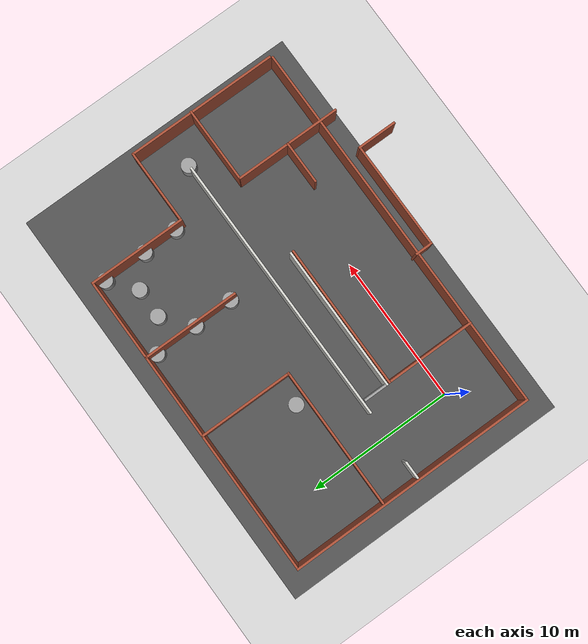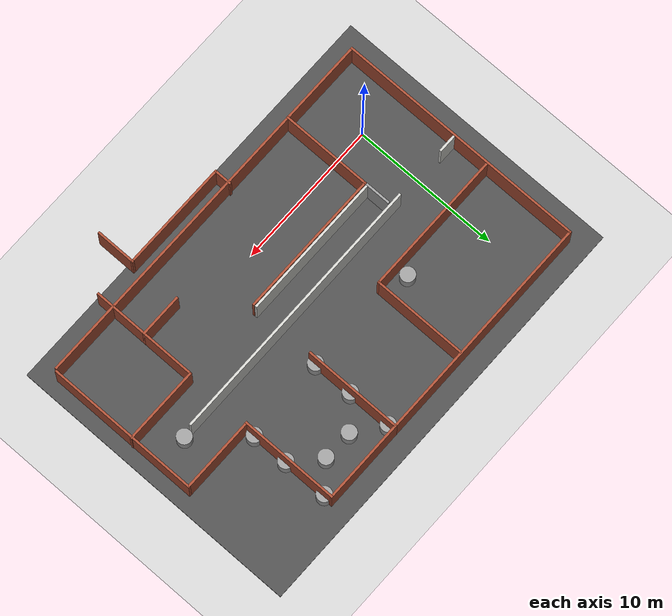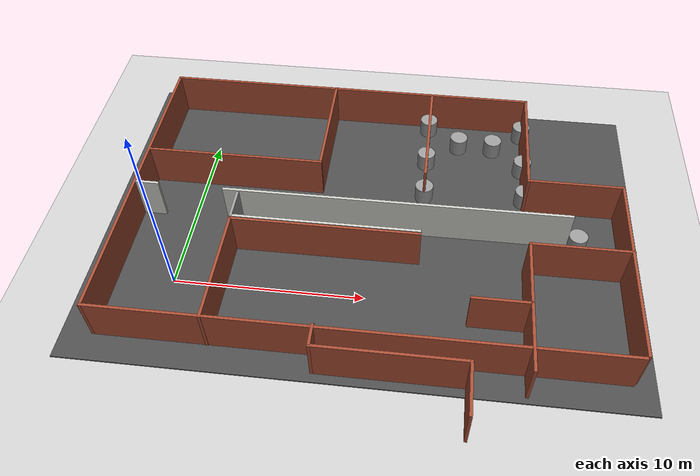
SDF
<sdf version="1.7">
 <world name="default">
  <light name="sun" type="directional">
   <pose>0 0 10 0 -0 0</pose>
   <diffuse>0.8 0.8 0.8 1</diffuse>
   <specular>0.2 0.2 0.2 1</specular>
   <attenuation>
    <range>1000</range>
    <constant>0.9</constant>
    <linear>0.01</linear>
    <quadratic>0.001</quadratic>
   </attenuation>
   <direction>-0.5 0.1 -0.9</direction>
   <spot><inner_angle>0</inner_angle><outer_angle>0</outer_angle><falloff>0</falloff></spot>
  </light>
  <model name="ground_plane">
   <static>1</static>
   <link name="link">
    <collision name="collision">
     <geometry><plane><normal>0 0 1</normal><size>100 100</size></plane></geometry>
     <surface><friction><ode><mu>100</mu><mu2>50</mu2></ode></friction></surface>
    </collision>
    <visual name="visual">
     <cast_shadows>0</cast_shadows>
     <geometry><plane><normal>0 0 1</normal><size>100 100</size></plane></geometry>
     <material>
      <script><uri>file://media/materials/scripts/gazebo.material</uri><name>Gazebo/Grey</name></script>
     </material>
    </visual>
   </link>
  </model>
  <gravity>0 0 -9.8</gravity>
  <magnetic_field>6e-06 2.3e-05 -4.2e-05</magnetic_field>
  <atmosphere type="adiabatic"/>
  <physics type="ode">
   <max_step_size>0.001</max_step_size>
   <real_time_factor>1</real_time_factor>
   <real_time_update_rate>1000</real_time_update_rate>
  </physics>
  <scene><ambient>0.4 0.4 0.4 1</ambient><background>0.7 0.7 0.7 1</background><shadows>1</shadows></scene>
  <audio><device>default</device></audio>
  <spherical_coordinates>
   <surface_model>EARTH_WGS84</surface_model>
   <latitude_deg>0</latitude_deg>
   <longitude_deg>0</longitude_deg>
   <elevation>0</elevation>
   <heading_deg>0</heading_deg>
  </spherical_coordinates>
  <model name="asphalt_plane">
   <static>1</static>
   <link name="link">
    <collision name="collision"><geometry><box><size>0 0 0.1</size></box></geometry></collision>
    <visual name="visual">
     <cast_shadows>0</cast_shadows>
     <geometry><box><size>0 0 0.1</size></box></geometry>
     <material>
      <script>
       <uri>model://asphalt_plane/materials/scripts</uri>
       <uri>model://asphalt_plane/materials/textures</uri>
       <name>vrc/asphalt</name>
      </script>
     </material>
    </visual>
   </link>
   <pose>-0.239334 0.1023 0 0 -0 0</pose>
  </model>
  <model name="asphalt_plane_0">
   <static>1</static>
   <link name="link">
    <collision name="collision"><geometry><box><size>28.8959 20 0.1</size></box></geometry></collision>
    <visual name="visual">
     <cast_shadows>0</cast_shadows>
     <geometry><box><size>28.8959 20 0.1</size></box></geometry>
     <material>
      <script>
       <uri>model://asphalt_plane/materials/scripts</uri>
       <uri>model://asphalt_plane/materials/textures</uri>
       <name>vrc/asphalt</name>
      </script>
     </material>
    </visual>
   </link>
   <pose>9.77864 4.93704 0 0 -0 0</pose>
  </model>
  <model name="Frontier">
   <pose>10.117 5.00234 0 0 -0 0</pose>
   <link name="Wall_11">
    <collision name="Wall_11_Collision">
     <geometry><box><size>15.75 0.15 2.5</size></box></geometry>
     <pose>0 0 1.25 0 -0 0</pose>
    </collision>
    <visual name="Wall_11_Visual">
     <pose>0 0 1.25 0 -0 0</pose>
     <geometry><box><size>15.75 0.15 2.5</size></box></geometry>
     <material>
      <script><uri>file://media/materials/scripts/gazebo.material</uri><name>Gazebo/Bricks</name></script>
      <ambient>1 1 1 1</ambient>
     </material>
     <meta><layer>0</layer></meta>
    </visual>
    <pose>-5.33966 8.55766 0 0 -0 3.14159</pose>
   </link>
   <link name="Wall_12">
    <collision name="Wall_12_Collision">
     <geometry><box><size>17.25 0.15 2.5</size></box></geometry>
     <pose>0 0 1.25 0 -0 0</pose>
    </collision>
    <visual name="Wall_12_Visual">
     <pose>0 0 1.25 0 -0 0</pose>
     <geometry><box><size>17.25 0.15 2.5</size></box></geometry>
     <material>
      <script><uri>file://media/materials/scripts/gazebo.material</uri><name>Gazebo/Bricks</name></script>
      <ambient>1 1 1 1</ambient>
     </material>
     <meta><layer>0</layer></meta>
    </visual>
    <pose>-13.1397 0.007655 0 0 -0 -1.5708</pose>
   </link>
   <link name="Wall_16">
    <collision name="Wall_16_Collision">
     <geometry><box><size>26.25 0.15 2.5</size></box></geometry>
     <pose>0 0 1.25 0 -0 0</pose>
    </collision>
    <visual name="Wall_16_Visual">
     <pose>0 0 1.25 0 -0 0</pose>
     <geometry><box><size>26.25 0.15 2.5</size></box></geometry>
     <material>
      <script><uri>file://media/materials/scripts/gazebo.material</uri><name>Gazebo/Bricks</name></script>
      <ambient>1 1 1 1</ambient>
     </material>
     <meta><layer>0</layer></meta>
    </visual>
    <pose>-0.089662 -8.54234 0 0 -0 0</pose>
   </link>
   <link name="Wall_18">
    <collision name="Wall_18_Collision">
     <geometry><box><size>10.5 0.15 2.5</size></box></geometry>
     <pose>0 0 1.25 0 -0 0</pose>
    </collision>
    <visual name="Wall_18_Visual">
     <pose>0 0 1.25 0 -0 0</pose>
     <geometry><box><size>10.5 0.15 2.5</size></box></geometry>
     <material>
      <script><uri>file://media/materials/scripts/gazebo.material</uri><name>Gazebo/Bricks</name></script>
      <ambient>1 1 1 1</ambient>
     </material>
     <meta><layer>0</layer></meta>
    </visual>
    <pose>13.103 -3.21734 0 0 -0 -1.5708</pose>
   </link>
   <link name="Wall_37">
    <collision name="Wall_37_Collision">
     <geometry><box><size>6.5 0.15 2.5</size></box></geometry>
     <pose>0 0 1.25 0 -0 0</pose>
    </collision>
    <visual name="Wall_37_Visual">
     <pose>0 0 1.25 0 -0 0</pose>
     <geometry><box><size>6.5 0.15 2.5</size></box></geometry>
     <material>
      <script><uri>file://media/materials/scripts/gazebo.material</uri><name>Gazebo/Bricks</name></script>
      <ambient>1 1 1 1</ambient>
     </material>
     <meta><layer>0</layer></meta>
    </visual>
    <pose>-3.38278 5.32384 0 0 -0 -1.5708</pose>
   </link>
   <link name="Wall_39">
    <collision name="Wall_39_Collision">
     <geometry><box><size>9.75 0.15 2.5</size></box></geometry>
     <pose>0 0 1.25 0 -0 0</pose>
    </collision>
    <visual name="Wall_39_Visual">
     <pose>0 0 1.25 0 -0 0</pose>
     <geometry><box><size>9.75 0.15 2.5</size></box></geometry>
     <material>
      <script><uri>file://media/materials/scripts/gazebo.material</uri><name>Gazebo/Bricks</name></script>
      <ambient>1 1 1 1</ambient>
     </material>
     <meta><layer>0</layer></meta>
    </visual>
    <pose>-8.18278 2.14884 0 0 -0 3.14159</pose>
   </link>
   <link name="Wall_4">
    <collision name="Wall_4_Collision">
     <geometry><box><size>5.19236 0.15 2.5</size></box></geometry>
     <pose>0 0 1.25 0 -0 0</pose>
    </collision>
    <visual name="Wall_4_Visual">
     <pose>0 0 1.25 0 -0 0</pose>
     <geometry><box><size>5.19236 0.15 2.5</size></box></geometry>
     <material>
      <script><uri>file://media/materials/scripts/gazebo.material</uri><name>Gazebo/Bricks</name></script>
      <ambient>1 1 1 1</ambient>
     </material>
     <meta><layer>0</layer></meta>
    </visual>
    <pose>10.5817 1.95765 0 0 -0 3.14159</pose>
   </link>
   <link name="Wall_46">
    <collision name="Wall_46_Collision">
     <geometry><box><size>5.25 0.15 2.5</size></box></geometry>
     <pose>0 0 1.25 0 -0 0</pose>
    </collision>
    <visual name="Wall_46_Visual">
     <pose>0 0 1.25 0 -0 0</pose>
     <geometry><box><size>5.25 0.15 2.5</size></box></geometry>
     <material>
      <script><uri>file://media/materials/scripts/gazebo.material</uri><name>Gazebo/Bricks</name></script>
      <ambient>1 1 1 1</ambient>
     </material>
     <meta><layer>0</layer></meta>
    </visual>
    <pose>10.5897 -2.46083 0 0 -0 3.14159</pose>
   </link>
   <link name="Wall_52">
    <collision name="Wall_52_Collision">
     <geometry><box><size>10 0.15 2.5</size></box></geometry>
     <pose>0 0 1.25 0 -0 0</pose>
    </collision>
    <visual name="Wall_52_Visual">
     <pose>0 0 1.25 0 -0 0</pose>
     <geometry><box><size>10 0.15 2.5</size></box></geometry>
     <material>
      <script><uri>file://media/materials/scripts/gazebo.material</uri><name>Gazebo/Bricks</name></script>
      <ambient>1 1 1 1</ambient>
     </material>
     <meta><layer>0</layer></meta>
    </visual>
    <pose>-2.47147 -2.45766 0 0 -0 3.14159</pose>
   </link>
   <link name="Wall_56">
    <collision name="Wall_56_Collision">
     <geometry><box><size>6.25 0.15 2.5</size></box></geometry>
     <pose>0 0 1.25 0 -0 0</pose>
    </collision>
    <visual name="Wall_56_Visual">
     <pose>0 0 1.25 0 -0 0</pose>
     <geometry><box><size>6.25 0.15 2.5</size></box></geometry>
     <material>
      <script><uri>file://media/materials/scripts/gazebo.material</uri><name>Gazebo/Bricks</name></script>
      <ambient>1 1 1 1</ambient>
     </material>
     <meta><layer>0</layer></meta>
    </visual>
    <pose>-7.39647 -5.50766 0 0 -0 -1.5708</pose>
   </link>
   <link name="Wall_7">
    <collision name="Wall_7_Collision">
     <geometry><box><size>6.75 0.15 2.5</size></box></geometry>
     <pose>0 0 1.25 0 -0 0</pose>
    </collision>
    <visual name="Wall_7_Visual">
     <pose>0 0 1.25 0 -0 0</pose>
     <geometry><box><size>6.75 0.15 2.5</size></box></geometry>
     <material>
      <script><uri>file://media/materials/scripts/gazebo.material</uri><name>Gazebo/Bricks</name></script>
      <ambient>1 1 1 1</ambient>
     </material>
     <meta><layer>0</layer></meta>
    </visual>
    <pose>8.06034 5.25765 0 0 -0 1.5708</pose>
   </link>
   <link name="Wall_8">
    <collision name="Wall_8_Collision">
     <geometry><box><size>5.75 0.15 2.5</size></box></geometry>
     <pose>0 0 1.25 0 -0 0</pose>
    </collision>
    <visual name="Wall_8_Visual">
     <pose>0 0 1.25 0 -0 0</pose>
     <geometry><box><size>5.75 0.15 2.5</size></box></geometry>
     <material>
      <script><uri>file://media/materials/scripts/gazebo.material</uri><name>Gazebo/Bricks</name></script>
      <ambient>1 1 1 1</ambient>
     </material>
     <meta><layer>0</layer></meta>
    </visual>
    <pose>5.26034 8.55766 0 0 -0 3.14159</pose>
   </link>
   <link name="Wall_9">
    <collision name="Wall_9_Collision">
     <geometry><box><size>6.75 0.15 2.5</size></box></geometry>
     <pose>0 0 1.25 0 -0 0</pose>
    </collision>
    <visual name="Wall_9_Visual">
     <pose>0 0 1.25 0 -0 0</pose>
     <geometry><box><size>6.75 0.15 2.5</size></box></geometry>
     <material>
      <script><uri>file://media/materials/scripts/gazebo.material</uri><name>Gazebo/Bricks</name></script>
      <ambient>1 1 1 1</ambient>
     </material>
     <meta><layer>0</layer></meta>
    </visual>
    <pose>2.46034 5.25765 0 0 -0 -1.5708</pose>
   </link>
   <static>1</static>
  </model>
  <model name="unit_cylinder_0">
   <pose>4.9397 7.87674 0.55 0 -0 0.000311</pose>
   <link name="link">
    <inertial>
     <mass>1</mass>
     <inertia><ixx>0.145833</ixx><ixy>0</ixy><ixz>0</ixz><iyy>0.145833</iyy><iyz>0</iyz><izz>0.125</izz></inertia>
    </inertial>
    <collision name="collision">
     <geometry><cylinder><radius>0.5</radius><length>1</length></cylinder></geometry>
    </collision>
    <visual name="visual">
     <geometry><cylinder><radius>0.5</radius><length>1</length></cylinder></geometry>
     <material>
      <script><name>Gazebo/Grey</name><uri>file://media/materials/scripts/gazebo.material</uri></script>
     </material>
    </visual>
   </link>
  </model>
  <model name="unit_cylinder_3">
   <pose>12.5755 7.35727 0.54999 0 -0 8.2e-05</pose>
   <link name="link">
    <inertial>
     <mass>1</mass>
     <inertia><ixx>0.145833</ixx><ixy>0</ixy><ixz>0</ixz><iyy>0.145833</iyy><iyz>0</iyz><izz>0.125</izz></inertia>
    </inertial>
    <collision name="collision">
     <geometry><cylinder><radius>0.5</radius><length>1</length></cylinder></geometry>
    </collision>
    <visual name="visual">
     <geometry><cylinder><radius>0.5</radius><length>1</length></cylinder></geometry>
     <material>
      <script><name>Gazebo/Grey</name><uri>file://media/materials/scripts/gazebo.material</uri></script>
     </material>
    </visual>
   </link>
  </model>
  <model name="unit_cylinder_4">
   <pose>12.5349 10.0474 0.550001 2e-06 1e-06 0.000542</pose>
   <link name="link">
    <inertial>
     <mass>1</mass>
     <inertia><ixx>0.145833</ixx><ixy>0</ixy><ixz>0</ixz><iyy>0.145833</iyy><iyz>0</iyz><izz>0.125</izz></inertia>
    </inertial>
    <collision name="collision">
     <geometry><cylinder><radius>0.5</radius><length>1</length></cylinder></geometry>
    </collision>
    <visual name="visual">
     <geometry><cylinder><radius>0.5</radius><length>1</length></cylinder></geometry>
     <material>
      <script><name>Gazebo/Grey</name><uri>file://media/materials/scripts/gazebo.material</uri></script>
     </material>
    </visual>
   </link>
  </model>
  <model name="unit_cylinder_5">
   <pose>12.5191 12.9835 0.55 0 -0 0.000523</pose>
   <link name="link">
    <inertial>
     <mass>1</mass>
     <inertia><ixx>0.145833</ixx><ixy>0</ixy><ixz>0</ixz><iyy>0.145833</iyy><iyz>0</iyz><izz>0.125</izz></inertia>
    </inertial>
    <collision name="collision">
     <geometry><cylinder><radius>0.5</radius><length>1</length></cylinder></geometry>
    </collision>
    <visual name="visual">
     <geometry><cylinder><radius>0.5</radius><length>1</length></cylinder></geometry>
     <material>
      <script><name>Gazebo/Grey</name><uri>file://media/materials/scripts/gazebo.material</uri></script>
     </material>
    </visual>
   </link>
  </model>
  <model name="Inner_Frontier_2_0">
   <pose>10.4125 -2.3169 0 0 -0 0</pose>
   <link name="Wall_28">
    <collision name="Wall_28_Collision">
     <geometry><box><size>2.75 0.15 2.5</size></box></geometry>
     <pose>0 0 1.25 0 -0 0</pose>
    </collision>
    <visual name="Wall_28_Visual">
     <pose>0 0 1.25 0 -0 0</pose>
     <geometry><box><size>2.75 0.15 2.5</size></box></geometry>
     <material>
      <script><uri>file://media/materials/scripts/gazebo.material</uri><name>Gazebo/Bricks</name></script>
      <ambient>1 1 1 1</ambient>
     </material>
     <meta><layer>0</layer></meta>
    </visual>
    <pose>4.95486 -3.52159 0 0 -0 1.5708</pose>
   </link>
   <link name="Wall_29">
    <collision name="Wall_29_Collision">
     <geometry><box><size>7.5 0.15 2.5</size></box></geometry>
     <pose>0 0 1.25 0 -0 0</pose>
    </collision>
    <visual name="Wall_29_Visual">
     <pose>0 0 1.25 0 -0 0</pose>
     <geometry><box><size>7.5 0.15 2.5</size></box></geometry>
     <material>
      <script><uri>file://media/materials/scripts/gazebo.material</uri><name>Gazebo/Bricks</name></script>
      <ambient>1 1 1 1</ambient>
     </material>
     <meta><layer>0</layer></meta>
    </visual>
    <pose>1.27986 -2.22159 0 0 -0 3.14159</pose>
   </link>
   <link name="Wall_30">
    <collision name="Wall_30_Collision">
     <geometry><box><size>1.25 0.15 2.5</size></box></geometry>
     <pose>0 0 1.25 0 -0 0</pose>
    </collision>
    <visual name="Wall_30_Visual">
     <pose>0 0 1.25 0 -0 0</pose>
     <geometry><box><size>1.25 0.15 2.5</size></box></geometry>
     <material>
      <script><uri>file://media/materials/scripts/gazebo.material</uri><name>Gazebo/Bricks</name></script>
      <ambient>1 1 1 1</ambient>
     </material>
     <meta><layer>0</layer></meta>
    </visual>
    <pose>-2.39514 -1.67159 0 0 -0 1.5708</pose>
   </link>
   <link name="Wall_33">
    <collision name="Wall_33_Collision">
     <geometry><box><size>3 0.15 2.5</size></box></geometry>
     <pose>0 0 1.25 0 -0 0</pose>
    </collision>
    <visual name="Wall_33_Visual">
     <pose>0 0 1.25 0 -0 0</pose>
     <geometry><box><size>3 0.15 2.5</size></box></geometry>
     <material>
      <script><uri>file://media/materials/scripts/gazebo.material</uri><name>Gazebo/Bricks</name></script>
      <ambient>1 1 1 1</ambient>
     </material>
     <meta><layer>0</layer></meta>
    </visual>
    <pose>6.30464 1.22159 0 0 -0 0</pose>
   </link>
   <link name="Wall_34">
    <collision name="Wall_34_Collision">
     <geometry><box><size>3.75 0.15 2.5</size></box></geometry>
     <pose>0 0 1.25 0 -0 0</pose>
    </collision>
    <visual name="Wall_34_Visual">
     <pose>0 0 1.25 0 -0 0</pose>
     <geometry><box><size>3.75 0.15 2.5</size></box></geometry>
     <material>
      <script><uri>file://media/materials/scripts/gazebo.material</uri><name>Gazebo/Bricks</name></script>
      <ambient>1 1 1 1</ambient>
     </material>
     <meta><layer>0</layer></meta>
    </visual>
    <pose>7.72964 -0.578413 0 0 -0 -1.5708</pose>
   </link>
   <link name="Wall_36">
    <collision name="Wall_36_Collision">
     <geometry><box><size>3.75 0.15 2.5</size></box></geometry>
     <pose>0 0 1.25 0 -0 0</pose>
    </collision>
    <visual name="Wall_36_Visual">
     <pose>0 0 1.25 0 -0 0</pose>
     <geometry><box><size>3.75 0.15 2.5</size></box></geometry>
     <material>
      <script><uri>file://media/materials/scripts/gazebo.material</uri><name>Gazebo/Bricks</name></script>
      <ambient>1 1 1 1</ambient>
     </material>
     <meta><layer>0</layer></meta>
    </visual>
    <pose>7.72964 3.02159 0 0 -0 1.5708</pose>
   </link>
   <static>1</static>
  </model>
  <model name="unit_cylinder_6">
   <pose>18.1879 7.53503 0.549992 3e-06 1e-06 -0.001986</pose>
   <link name="link">
    <inertial>
     <mass>1</mass>
     <inertia><ixx>0.145833</ixx><ixy>0</ixy><ixz>0</ixz><iyy>0.145833</iyy><iyz>0</iyz><izz>0.125</izz></inertia>
    </inertial>
    <collision name="collision">
     <geometry><cylinder><radius>0.5</radius><length>1</length></cylinder></geometry>
    </collision>
    <visual name="visual">
     <geometry><cylinder><radius>0.5</radius><length>1</length></cylinder></geometry>
     <material>
      <script><name>Gazebo/Grey</name><uri>file://media/materials/scripts/gazebo.material</uri></script>
     </material>
    </visual>
   </link>
  </model>
  <model name="unit_cylinder_2">
   <pose>18.1292 9.94518 0.549991 1e-06 -0 1e-06</pose>
   <link name="link">
    <inertial>
     <mass>1</mass>
     <inertia><ixx>0.145833</ixx><ixy>0</ixy><ixz>0</ixz><iyy>0.145833</iyy><iyz>0</iyz><izz>0.125</izz></inertia>
    </inertial>
    <collision name="collision">
     <geometry><cylinder><radius>0.5</radius><length>1</length></cylinder></geometry>
    </collision>
    <visual name="visual">
     <geometry><cylinder><radius>0.5</radius><length>1</length></cylinder></geometry>
     <material>
      <script><name>Gazebo/Grey</name><uri>file://media/materials/scripts/gazebo.material</uri></script>
     </material>
    </visual>
   </link>
  </model>
  <model name="unit_cylinder_7">
   <pose>18.1247 12.9418 0.549992 -2e-06 4e-06 -0.000693</pose>
   <link name="link">
    <inertial>
     <mass>1</mass>
     <inertia><ixx>0.145833</ixx><ixy>0</ixy><ixz>0</ixz><iyy>0.145833</iyy><iyz>0</iyz><izz>0.125</izz></inertia>
    </inertial>
    <collision name="collision">
     <geometry><cylinder><radius>0.5</radius><length>1</length></cylinder></geometry>
    </collision>
    <visual name="visual">
     <geometry><cylinder><radius>0.5</radius><length>1</length></cylinder></geometry>
     <material>
      <script><name>Gazebo/Grey</name><uri>file://media/materials/scripts/gazebo.material</uri></script>
     </material>
    </visual>
   </link>
  </model>
  <model name="unit_cylinder_8">
   <pose>14.3895 11.5907 0.55 0 -0 2.5e-05</pose>
   <link name="link">
    <inertial>
     <mass>1</mass>
     <inertia><ixx>0.145833</ixx><ixy>0</ixy><ixz>0</ixz><iyy>0.145833</iyy><iyz>0</iyz><izz>0.125</izz></inertia>
    </inertial>
    <collision name="collision">
     <geometry><cylinder><radius>0.5</radius><length>1</length></cylinder></geometry>
    </collision>
    <visual name="visual">
     <geometry><cylinder><radius>0.5</radius><length>1</length></cylinder></geometry>
     <material>
      <script><name>Gazebo/Grey</name><uri>file://media/materials/scripts/gazebo.material</uri></script>
     </material>
    </visual>
   </link>
  </model>
  <model name="unit_cylinder_9">
   <pose>16.4002 11.55 0.55 0 -0 1.5e-05</pose>
   <link name="link">
    <inertial>
     <mass>1</mass>
     <inertia><ixx>0.145833</ixx><ixy>0</ixy><ixz>0</ixz><iyy>0.145833</iyy><iyz>0</iyz><izz>0.125</izz></inertia>
    </inertial>
    <collision name="collision">
     <geometry><cylinder><radius>0.5</radius><length>1</length></cylinder></geometry>
    </collision>
    <visual name="visual">
     <geometry><cylinder><radius>0.5</radius><length>1</length></cylinder></geometry>
     <material>
      <script><name>Gazebo/Grey</name><uri>file://media/materials/scripts/gazebo.material</uri></script>
     </material>
    </visual>
   </link>
  </model>
  <model name="unit_cylinder_10">
   <pose>20.9721 4.53693 0.550001 3e-06 1e-06 -3.5e-05</pose>
   <link name="link">
    <inertial>
     <mass>1</mass>
     <inertia><ixx>0.145833</ixx><ixy>0</ixy><ixz>0</ixz><iyy>0.145833</iyy><iyz>0</iyz><izz>0.125</izz></inertia>
    </inertial>
    <collision name="collision">
     <geometry><cylinder><radius>0.5</radius><length>1</length></cylinder></geometry>
    </collision>
    <visual name="visual">
     <geometry><cylinder><radius>0.5</radius><length>1</length></cylinder></geometry>
     <material>
      <script><name>Gazebo/Grey</name><uri>file://media/materials/scripts/gazebo.material</uri></script>
     </material>
    </visual>
   </link>
  </model>
  <model name="newFasemWall">
   <pose>8.75668 2.32849 0 0 -0 0</pose>
   <link name="Wall_13">
    <collision name="Wall_13_Collision">
     <geometry><box><size>1.75 0.15 2.5</size></box></geometry>
     <pose>0 0 1.25 0 -0 0</pose>
    </collision>
    <visual name="Wall_13_Visual">
     <pose>0 0 1.25 0 -0 0</pose>
     <geometry><box><size>1.75 0.15 2.5</size></box></geometry>
     <material>
      <script><uri>file://media/materials/scripts/gazebo.material</uri><name>Gazebo/Grey</name></script>
      <ambient>1 1 1 1</ambient>
     </material>
     <meta><layer>0</layer></meta>
    </visual>
    <pose>-6.05275 1.20334 0 0 -0 1.5708</pose>
   </link>
   <link name="Wall_3">
    <collision name="Wall_3_Collision">
     <geometry><box><size>18.6093 0.15 2.5</size></box></geometry>
     <pose>0 0 1.25 0 -0 0</pose>
    </collision>
    <visual name="Wall_3_Visual">
     <pose>0 0 1.25 0 -0 0</pose>
     <geometry><box><size>18.6093 0.15 2.5</size></box></geometry>
     <material>
      <script><uri>file://media/materials/scripts/gazebo.material</uri><name>Gazebo/CeilingTiled</name></script>
      <ambient>1 1 1 1</ambient>
     </material>
     <meta><layer>0</layer></meta>
    </visual>
    <pose>2.39725 2.23575 0 0 -0 0.001906</pose>
   </link>
   <link name="Wall_5">
    <collision name="Wall_5_Collision">
     <geometry><box><size>1.25 0.15 2.5</size></box></geometry>
     <pose>0 0 1.25 0 -0 0</pose>
    </collision>
    <visual name="Wall_5_Visual">
     <pose>0 0 1.25 0 -0 0</pose>
     <geometry><box><size>1.25 0.15 2.5</size></box></geometry>
     <material>
      <script><uri>file://media/materials/scripts/gazebo.material</uri><name>Gazebo/CeilingTiled</name></script>
      <ambient>1 1 1 1</ambient>
     </material>
     <meta><layer>0</layer></meta>
    </visual>
    <pose>-11.077 2.25334 0 0 -0 3.14159</pose>
   </link>
   <link name="Wall_9">
    <collision name="Wall_9_Collision">
     <geometry><box><size>10 0.15 2.5</size></box></geometry>
     <pose>0 0 1.25 0 -0 0</pose>
    </collision>
    <visual name="Wall_9_Visual">
     <pose>0 0 1.25 0 -0 0</pose>
     <geometry><box><size>10 0.15 2.5</size></box></geometry>
     <material>
      <script><uri>file://media/materials/scripts/gazebo.material</uri><name>Gazebo/CeilingTiled</name></script>
      <ambient>1 1 1 1</ambient>
     </material>
     <meta><layer>0</layer></meta>
    </visual>
    <pose>-1.12775 0.403342 0 0 -0 0</pose>
   </link>
   <static>1</static>
  </model>
 </world>
</sdf>
